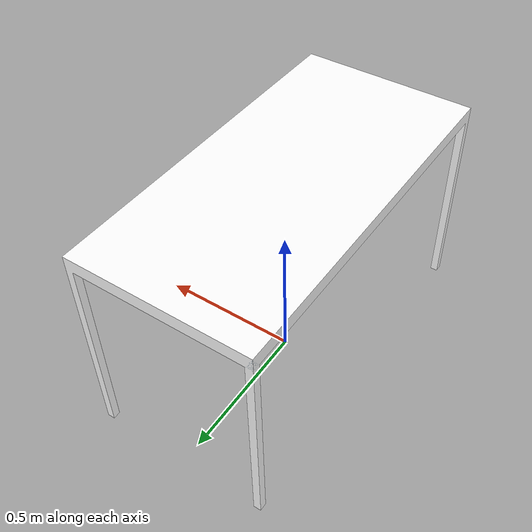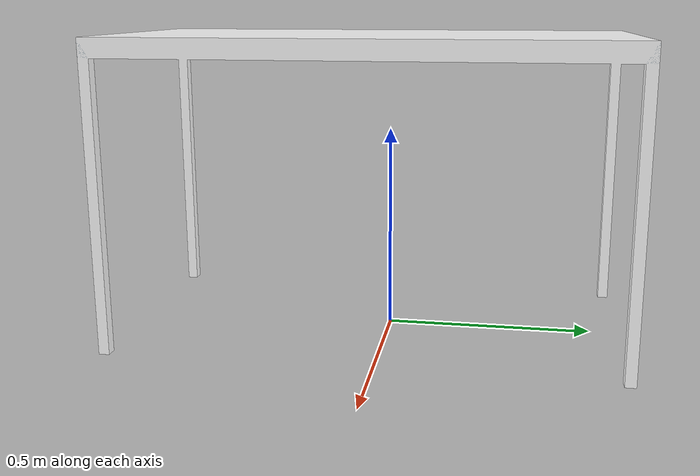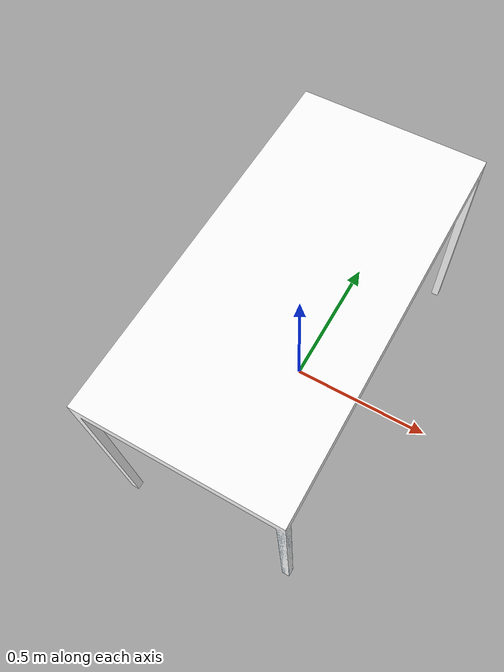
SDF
<?xml version="1.0" ?>
<sdf version="1.6">
  <model name="whitetablesmall">
    <static>true</static>
    <link name="link">
      <collision name="collision">
        <geometry>
          <mesh>
            <scale>0.5 0.5 0.9</scale>
            <uri>model://whitetablesmall/meshes/whitetable.dae</uri>
          </mesh>
        </geometry>
      </collision>
      <visual name="visual">
        <geometry>
          <mesh>
            <scale>0.5 0.5 0.9</scale>
            <uri>model://whitetablesmall/meshes/whitetable.dae</uri>
          </mesh>
        </geometry>
       <material>
         <script>
           <uri>model://flipchart/materials/scripts</uri>
           <uri>model://flipchart/materials/textures</uri>
           <name>FlipChart/Diffuse</name>
         </script>
       </material>
      </visual>
    </link>
  </model>
</sdf>
